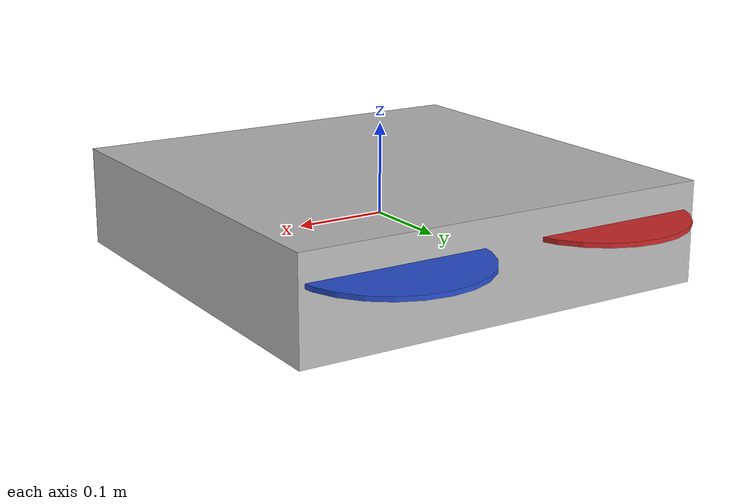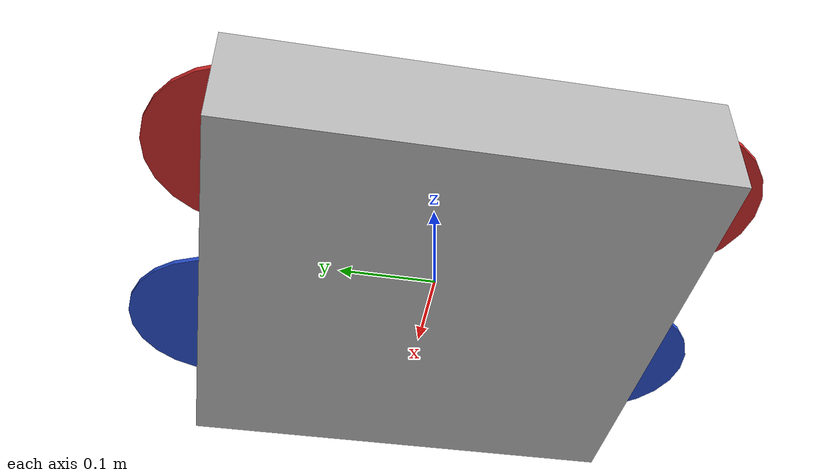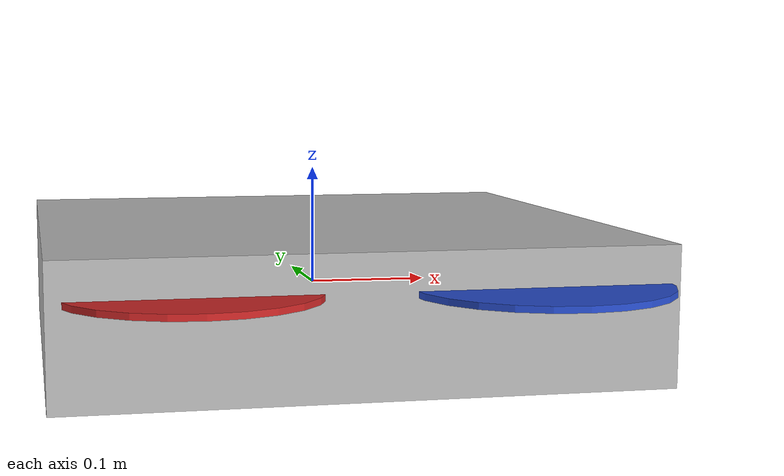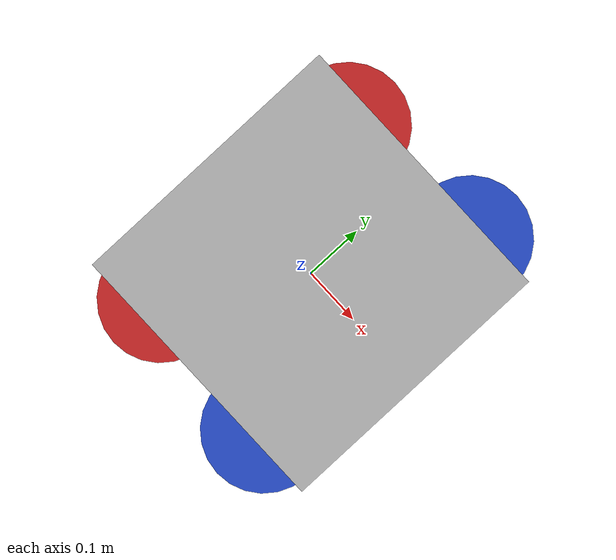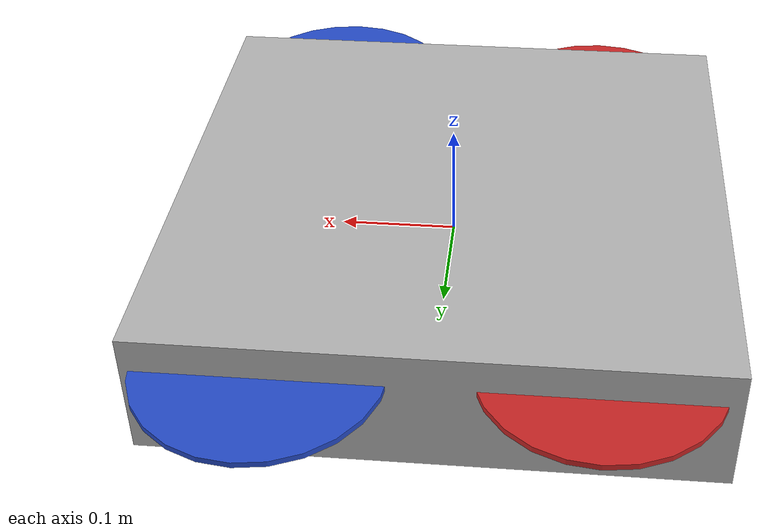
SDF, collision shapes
<?xml version="1.0"?>
<sdf version="1.6">
    <model name="drone">
        <link name="base_link">
            <pose frame="">0 0 0 0 -0 0</pose>
            <inertial>
                <pose frame="">0 0 0 0 -0 0</pose>
                <mass>1.5</mass>
                <inertia>
                  <ixx>0.025</ixx>
                  <ixy>0</ixy>
                  <ixz>0</ixz>
                  <iyy>0.009</iyy>
                  <iyz>0</iyz>
                  <izz>0.033</izz>
                </inertia>
            </inertial>
            <collision name="base_link_inertia_collision">
                <pose frame="">0 0 0 0 -0 0</pose>
                <geometry>
                    <box>
                        <size>0.47 0.47 0.11</size>
                    </box>
                </geometry>
            </collision>
            <visual name="base_link_inertia_visual">
                <pose frame="">0 0 0 0 -0 0</pose>
                <geometry>
                    <mesh>
                        <scale>1 1 1</scale>
                        <uri>model://drone/meshes/x3.dae</uri>
                    </mesh>
                </geometry>
            </visual>
            <visual name="marker_visual_1">
                <pose frame="">-0.07 0 0.065 0 -0 0</pose>
                <geometry>
                    <mesh>
                        <uri>model://drone/meshes/led.dae</uri>
                    </mesh>
                </geometry>
            </visual>
            <visual name="marker_visual_2">
                <pose frame="">-0.08 0.037 0.04 -1.0472 -0 0.2</pose>
                <geometry>
                    <mesh>
                        <uri>model://drone/meshes/led.dae</uri>
                    </mesh>
                </geometry>
            </visual>
            <visual name="marker_visual_3">
                <pose frame="">-0.08 -0.035 0.04 1.0472 -0 -0.1</pose>
                <geometry>
                    <mesh>
                        <uri>model://drone/meshes/led.dae</uri>
                    </mesh>
                </geometry>
            </visual>

            <light name="right_light_source" type="spot">
                <pose frame="">0.01 -0.08 0.05 3.131592653589795 -1.5107899999999999 2.841592653589791</pose>
                <attenuation>
                    <range>15</range>
                    <linear>0</linear>
                    <constant>0.1</constant>
                    <quadratic>0.01</quadratic>
                </attenuation>
                <diffuse>0.8 0.8 0.5 1</diffuse>
                <specular>0.8 0.8 0.5 1</specular>
                <spot>
                    <inner_angle>1</inner_angle>
                    <outer_angle>1.1</outer_angle>
                    <falloff>1</falloff>
                </spot>
                <direction>0 0 -1</direction>
                <cast_shadows>1</cast_shadows>
            </light>
            <light name="downward_flashlight_source" type="spot">
                <pose frame="">0.03 0 0.075 -0.01 -1.3708026535897933 0</pose>
                <attenuation>
                    <range>15</range>
                    <linear>0</linear>
                    <constant>0.1</constant>
                    <quadratic>0.01</quadratic>
                </attenuation>
                <diffuse>0.8 0.8 0.5 1</diffuse>
                <specular>0.8 0.8 0.5 1</specular>
                <spot>
                    <inner_angle>1</inner_angle>
                    <outer_angle>1.1</outer_angle>
                    <falloff>1</falloff>
                </spot>
                <direction>0 0 -1</direction>
                <cast_shadows>1</cast_shadows>
            </light>
            <light name="left_flashlight_source" type="spot">
                <pose frame="">0.01 0.08 0.05 3.131592653589795 -1.5107899999999999 -2.841592653589791</pose>
                <attenuation>
                    <range>15</range>
                    <linear>0</linear>
                    <constant>0.1</constant>
                    <quadratic>0.01</quadratic>
                </attenuation>
                <diffuse>0.8 0.8 0.5 1</diffuse>
                <specular>0.8 0.8 0.5 1</specular>
                <spot>
                    <inner_angle>1</inner_angle>
                    <outer_angle>1.1</outer_angle>
                    <falloff>1</falloff>
                </spot>
                <direction>0 0 -1</direction>
                <cast_shadows>1</cast_shadows>
            </light>

            <sensor name="imu" type="imu">
                <topic>drone/imu</topic>
                <always_on>1</always_on>
                <update_rate>250</update_rate>
                <imu>
                    <enable_orientation>0</enable_orientation>
                    <angular_velocity>
                        <x>
                            <noise type="gaussian">
                                <mean>0</mean>
                                <stddev>0.009</stddev>
                                <bias_mean>0.00075</bias_mean>
                                <bias_stddev>0.005</bias_stddev>
                                <dynamic_bias_stddev>0.00002</dynamic_bias_stddev>
                                <dynamic_bias_correlation_time>400.0</dynamic_bias_correlation_time>
                                <precision>0.00025</precision>
                            </noise>
                        </x>
                        <y>
                            <noise type="gaussian">
                                <mean>0</mean>
                                <stddev>0.009</stddev>
                                <bias_mean>0.00075</bias_mean>
                                <bias_stddev>0.005</bias_stddev>
                                <dynamic_bias_stddev>0.00002</dynamic_bias_stddev>
                                <dynamic_bias_correlation_time>400.0</dynamic_bias_correlation_time>
                                <precision>0.00025</precision>
                            </noise>
                        </y>
                        <z>
                            <noise type="gaussian">
                                <mean>0</mean>
                                <stddev>0.009</stddev>
                                <bias_mean>0.00075</bias_mean>
                                <bias_stddev>0.005</bias_stddev>
                                <dynamic_bias_stddev>0.00002</dynamic_bias_stddev>
                                <dynamic_bias_correlation_time>400.0</dynamic_bias_correlation_time>
                                <precision>0.00025</precision>
                            </noise>
                        </z>
                    </angular_velocity>
                    <linear_acceleration>
                        <x>
                            <noise type="gaussian">
                                <mean>0</mean>
                                <stddev>0.021</stddev>
                                <bias_mean>0.05</bias_mean>
                                <bias_stddev>0.0075</bias_stddev>
                                <dynamic_bias_stddev>0.000375</dynamic_bias_stddev>
                                <dynamic_bias_correlation_time>175.0</dynamic_bias_correlation_time>
                                <precision>0.005</precision>
                            </noise>
                        </x>
                        <y>
                            <noise type="gaussian">
                                <mean>0</mean>
                                <stddev>0.021</stddev>
                                <bias_mean>0.05</bias_mean>
                                <bias_stddev>0.0075</bias_stddev>
                                <dynamic_bias_stddev>0.000375</dynamic_bias_stddev>
                                <dynamic_bias_correlation_time>175.0</dynamic_bias_correlation_time>
                                <precision>0.005</precision>
                            </noise>
                        </y>
                        <z>
                            <noise type="gaussian">
                                <mean>0</mean>
                                <stddev>0.021</stddev>
                                <bias_mean>0.05</bias_mean>
                                <bias_stddev>0.0075</bias_stddev>
                                <dynamic_bias_stddev>0.000375</dynamic_bias_stddev>
                                <dynamic_bias_correlation_time>175.0</dynamic_bias_correlation_time>
                                <precision>0.005</precision>
                            </noise>
                        </z>
                    </linear_acceleration>
                </imu>
            </sensor>
            <sensor name="air_pressure" type="air_pressure">
                <topic>drone/air_pressure</topic>
                <always_on>1</always_on>
                <update_rate>20</update_rate>
                <air_pressure>
                    <reference_altitude>0</reference_altitude>
                    <pressure>
                        <noise type="gaussian">
                            <mean>0</mean>
                            <stddev>1.0</stddev>
                            <bias_mean>0</bias_mean>
                            <bias_stddev>10</bias_stddev>
                            <dynamic_bias_stddev>10</dynamic_bias_stddev>
                            <dynamic_bias_correlation_time>3600</dynamic_bias_correlation_time>
                        </noise>
                    </pressure>
                </air_pressure>
            </sensor>
            <sensor name="magnetometer" type="magnetometer">
                <topic>drone/magnetometer</topic>
                <always_on>1</always_on>
                <update_rate>20</update_rate>
                <magnetometer>
                    <x>
                        <noise type="gaussian">
                            <mean>0.0</mean>
                            <stddev>0.01</stddev>
                        </noise>
                    </x>
                    <y>
                        <noise type="gaussian">
                            <mean>0.0</mean>
                            <stddev>0.01</stddev>
                        </noise>
                    </y>
                    <z>
                        <noise type="gaussian">
                            <mean>0.0</mean>
                            <stddev>0.01</stddev>
                        </noise>
                    </z>
                </magnetometer>
            </sensor>
            <!-- Use lidar to mimic sonar -->
            <sensor name='sonar' type='gpu_lidar'>
                <always_on>1</always_on>
                <update_rate>20</update_rate>
                <topic>drone/sonar</topic>
                <pose>0 0 0 0 1.57 0</pose>
                <ray>
                    <scan>
                        <horizontal>
                            <samples>2</samples>
                            <resolution>1</resolution>
                            <min_angle>0</min_angle>
                            <max_angle>0.01745329251</max_angle>
                        </horizontal>
                        <vertical>
                            <samples>1</samples>
                            <resolution>1</resolution>
                            <min_angle>-0.01745329251</min_angle>
                            <max_angle>0.01745329251</max_angle>
                        </vertical>
                    </scan>
                    <range>
                        <min>0.01</min>
                        <max>4</max>
                        <resolution>0.02</resolution>
                    </range>
                    <noise>
                        <type>gaussian</type>
                        <mean>0.0</mean>
                        <stddev>0.02</stddev>
                    </noise>
                </ray>
            </sensor>

            <!-- yk: gps horizontal stddev is not in meters but in the original long and lat degrees -->
            <sensor name="gps" type="navsat">
                <topic>drone/fix</topic>
                <always_on>1</always_on>
                <update_rate>2</update_rate>
                <navsat>
                    <position_sensing>
                        <horizontal>
                            <noise type="gaussian">
                                <mean>0.0</mean>
                                <stddev>0.000001</stddev>
                            </noise>
                        </horizontal>
                        <vertical>
                            <noise type="gaussian">
                                <mean>0.0</mean>
                                <stddev>0.0</stddev>
                            </noise>
                        </vertical>
                    </position_sensing>
                </navsat>
            </sensor>

        </link>
        <link name="rotor_0">
            <pose frame="">0.13 -0.22 0.023 0 -0 0</pose>
            <inertial>
                <pose frame="">0 0 0 0 -0 0</pose>
                <mass>0.005</mass>
                <inertia>
                    <ixx>9.75e-07</ixx>
                    <ixy>0</ixy>
                    <ixz>0</ixz>
                    <iyy>4.17041e-05</iyy>
                    <iyz>0</iyz>
                    <izz>4.26041e-05</izz>
                </inertia>
            </inertial>
            <collision name="rotor_0_collision">
                <pose frame="">0 0 0 0 -0 0</pose>
                <geometry>
                    <cylinder>
                        <length>0.005</length>
                        <radius>0.1</radius>
                    </cylinder>
                </geometry>
                <surface>
                    <contact>
                        <ode/>
                    </contact>
                    <friction>
                        <ode/>
                    </friction>
                </surface>
            </collision>
            <visual name="rotor_0_visual">
                <pose frame="">0 0 0 0 -0 0</pose>
                <geometry>
                    <mesh>
                        <scale>0.1 0.1 0.1</scale>
                        <uri>model://drone/meshes/propeller_ccw.dae</uri>
                    </mesh>
                </geometry>
                <material>
                    <diffuse>0 0 1 1</diffuse>
                    <script>
                        <name>Gazebo/Blue</name>
                        <uri>file://media/materials/scripts/gazebo.material</uri>
                    </script>
                </material>
                <cast_shadows>0</cast_shadows>
            </visual>
            <gravity>1</gravity>
            <velocity_decay/>
        </link>
        <joint name="rotor_0_joint" type="revolute">
            <child>rotor_0</child>
            <parent>base_link</parent>
            <axis>
                <xyz>0 0 1</xyz>
                <limit>
                    <lower>-1e+16</lower>
                    <upper>1e+16</upper>
                </limit>
                <dynamics>
                    <spring_reference>0</spring_reference>
                    <spring_stiffness>0</spring_stiffness>
                </dynamics>
                <use_parent_model_frame>1</use_parent_model_frame>
            </axis>
        </joint>
        <link name="rotor_1">
            <pose frame="">-0.13 0.2 0.023 0 -0 0</pose>
            <inertial>
                <pose frame="">0 0 0 0 -0 0</pose>
                <mass>0.005</mass>
                <inertia>
                    <ixx>9.75e-07</ixx>
                    <ixy>0</ixy>
                    <ixz>0</ixz>
                    <iyy>4.17041e-05</iyy>
                    <iyz>0</iyz>
                    <izz>4.26041e-05</izz>
                </inertia>
            </inertial>
            <collision name="rotor_1_collision">
                <pose frame="">0 0 0 0 -0 0</pose>
                <geometry>
                    <cylinder>
                        <length>0.005</length>
                        <radius>0.1</radius>
                    </cylinder>
                </geometry>
                <surface>
                    <contact>
                        <ode/>
                    </contact>
                    <friction>
                        <ode/>
                    </friction>
                </surface>
            </collision>
            <visual name="rotor_1_visual">
                <pose frame="">0 0 0 0 -0 0</pose>
                <geometry>
                    <mesh>
                        <scale>0.1 0.1 0.1</scale>
                        <uri>model://drone/meshes/propeller_ccw.dae</uri>
                    </mesh>
                </geometry>
                <material>
                    <diffuse>1 0 0 1</diffuse>
                    <script>
                        <name>Gazebo/Red</name>
                        <uri>file://media/materials/scripts/gazebo.material</uri>
                    </script>
                </material>
                <cast_shadows>0</cast_shadows>
            </visual>
            <gravity>1</gravity>
            <velocity_decay/>
        </link>
        <joint name="rotor_1_joint" type="revolute">
            <child>rotor_1</child>
            <parent>base_link</parent>
            <axis>
                <xyz>0 0 1</xyz>
                <limit>
                    <lower>-1e+16</lower>
                    <upper>1e+16</upper>
                </limit>
                <dynamics>
                    <spring_reference>0</spring_reference>
                    <spring_stiffness>0</spring_stiffness>
                </dynamics>
                <use_parent_model_frame>1</use_parent_model_frame>
            </axis>
        </joint>
        <link name="rotor_2">
            <pose frame="">0.13 0.22 0.023 0 -0 0</pose>
            <inertial>
                <pose frame="">0 0 0 0 -0 0</pose>
                <mass>0.005</mass>
                <inertia>
                    <ixx>9.75e-07</ixx>
                    <ixy>0</ixy>
                    <ixz>0</ixz>
                    <iyy>4.17041e-05</iyy>
                    <iyz>0</iyz>
                    <izz>4.26041e-05</izz>
                </inertia>
            </inertial>
            <collision name="rotor_2_collision">
                <pose frame="">0 0 0 0 -0 0</pose>
                <geometry>
                    <cylinder>
                        <length>0.005</length>
                        <radius>0.1</radius>
                    </cylinder>
                </geometry>
                <surface>
                    <contact>
                        <ode/>
                    </contact>
                    <friction>
                        <ode/>
                    </friction>
                </surface>
            </collision>
            <visual name="rotor_2_visual">
                <pose frame="">0 0 0 0 -0 0</pose>
                <geometry>
                    <mesh>
                        <scale>0.1 0.1 0.1</scale>
                        <uri>model://drone/meshes/propeller_cw.dae</uri>
                    </mesh>
                </geometry>
                <material>
                    <diffuse>0 0 1 1</diffuse>
                    <script>
                        <name>Gazebo/Blue</name>
                        <uri>file://media/materials/scripts/gazebo.material</uri>
                    </script>
                </material>
                <cast_shadows>0</cast_shadows>
            </visual>
            <gravity>1</gravity>
            <velocity_decay/>
        </link>
        <joint name="rotor_2_joint" type="revolute">
            <child>rotor_2</child>
            <parent>base_link</parent>
            <axis>
                <xyz>0 0 1</xyz>
                <limit>
                    <lower>-1e+16</lower>
                    <upper>1e+16</upper>
                </limit>
                <dynamics>
                    <spring_reference>0</spring_reference>
                    <spring_stiffness>0</spring_stiffness>
                </dynamics>
                <use_parent_model_frame>1</use_parent_model_frame>
            </axis>
        </joint>
        <link name="rotor_3">
            <pose frame="">-0.13 -0.2 0.023 0 -0 0</pose>
            <inertial>
                <pose frame="">0 0 0 0 -0 0</pose>
                <mass>0.005</mass>
                <inertia>
                    <ixx>9.75e-07</ixx>
                    <ixy>0</ixy>
                    <ixz>0</ixz>
                    <iyy>4.17041e-05</iyy>
                    <iyz>0</iyz>
                    <izz>4.26041e-05</izz>
                </inertia>
            </inertial>
            <collision name="rotor_3_collision">
                <pose frame="">0 0 0 0 -0 0</pose>
                <geometry>
                    <cylinder>
                        <length>0.005</length>
                        <radius>0.1</radius>
                    </cylinder>
                </geometry>
                <surface>
                    <contact>
                        <ode/>
                    </contact>
                    <friction>
                        <ode/>
                    </friction>
                </surface>
            </collision>
            <visual name="rotor_3_visual">
                <pose frame="">0 0 0 0 -0 0</pose>
                <geometry>
                    <mesh>
                        <scale>0.1 0.1 0.1</scale>
                        <uri>model://drone/meshes/propeller_cw.dae</uri>
                    </mesh>
                </geometry>
                <material>
                    <diffuse>1 0 0 1</diffuse>
                    <script>
                        <name>Gazebo/Red</name>
                        <uri>file://media/materials/scripts/gazebo.material</uri>
                    </script>
                </material>
                <cast_shadows>0</cast_shadows>
            </visual>
            <gravity>1</gravity>
            <velocity_decay/>
        </link>
        <joint name="rotor_3_joint" type="revolute">
            <child>rotor_3</child>
            <parent>base_link</parent>
            <axis>
                <xyz>0 0 1</xyz>
                <limit>
                    <lower>-1e+16</lower>
                    <upper>1e+16</upper>
                </limit>
                <dynamics>
                    <spring_reference>0</spring_reference>
                    <spring_stiffness>0</spring_stiffness>
                </dynamics>
                <use_parent_model_frame>1</use_parent_model_frame>
            </axis>
        </joint>

    <plugin
        filename="gz-sim-multicopter-motor-model-system"
        name="gz::sim::systems::MulticopterMotorModel">
        <robotNamespace>drone</robotNamespace>
        <jointName>rotor_0_joint</jointName>
        <linkName>rotor_0</linkName>
        <turningDirection>ccw</turningDirection>
        <timeConstantUp>0.0125</timeConstantUp>
        <timeConstantDown>0.025</timeConstantDown>
        <maxRotVelocity>800.0</maxRotVelocity>
        <motorConstant>8.54858e-06</motorConstant>
        <momentConstant>0.016</momentConstant>
        <commandSubTopic>command/motor_speed/0</commandSubTopic>
        <actuator_number>0</actuator_number>
        <rotorDragCoefficient>8.06428e-05</rotorDragCoefficient>
        <rollingMomentCoefficient>1e-06</rollingMomentCoefficient>
        <motorSpeedPubTopic>motor_speed/0</motorSpeedPubTopic>
        <rotorVelocitySlowdownSim>10</rotorVelocitySlowdownSim>
        <motorType>velocity</motorType>
      </plugin>
      <plugin
        filename="gz-sim-multicopter-motor-model-system"
        name="gz::sim::systems::MulticopterMotorModel">
        <robotNamespace>drone</robotNamespace>
        <jointName>rotor_1_joint</jointName>
        <linkName>rotor_1</linkName>
        <turningDirection>ccw</turningDirection>
        <timeConstantUp>0.0125</timeConstantUp>
        <timeConstantDown>0.025</timeConstantDown>
        <maxRotVelocity>800.0</maxRotVelocity>
        <motorConstant>8.54858e-06</motorConstant>
        <momentConstant>0.016</momentConstant>
        <commandSubTopic>command/motor_speed/1</commandSubTopic>
        <actuator_number>1</actuator_number>
        <rotorDragCoefficient>8.06428e-05</rotorDragCoefficient>
        <rollingMomentCoefficient>1e-06</rollingMomentCoefficient>
        <motorSpeedPubTopic>motor_speed/1</motorSpeedPubTopic>
        <rotorVelocitySlowdownSim>10</rotorVelocitySlowdownSim>
        <motorType>velocity</motorType>
      </plugin>
      <plugin
        filename="gz-sim-multicopter-motor-model-system"
        name="gz::sim::systems::MulticopterMotorModel">
        <robotNamespace>drone</robotNamespace>
        <jointName>rotor_2_joint</jointName>
        <linkName>rotor_2</linkName>
        <turningDirection>cw</turningDirection>
        <timeConstantUp>0.0125</timeConstantUp>
        <timeConstantDown>0.025</timeConstantDown>
        <maxRotVelocity>800.0</maxRotVelocity>
        <motorConstant>8.54858e-06</motorConstant>
        <momentConstant>0.016</momentConstant>
        <commandSubTopic>command/motor_speed/2</commandSubTopic>
        <actuator_number>2</actuator_number>
        <rotorDragCoefficient>8.06428e-05</rotorDragCoefficient>
        <rollingMomentCoefficient>1e-06</rollingMomentCoefficient>
        <motorSpeedPubTopic>motor_speed/2</motorSpeedPubTopic>
        <rotorVelocitySlowdownSim>10</rotorVelocitySlowdownSim>
        <motorType>velocity</motorType>
      </plugin>
      <plugin
        filename="gz-sim-multicopter-motor-model-system"
        name="gz::sim::systems::MulticopterMotorModel">
        <robotNamespace>drone</robotNamespace>
        <jointName>rotor_3_joint</jointName>
        <linkName>rotor_3</linkName>
        <turningDirection>cw</turningDirection>
        <timeConstantUp>0.0125</timeConstantUp>
        <timeConstantDown>0.025</timeConstantDown>
        <maxRotVelocity>800.0</maxRotVelocity>
        <motorConstant>8.54858e-06</motorConstant>
        <momentConstant>0.016</momentConstant>
        <commandSubTopic>command/motor_speed/3</commandSubTopic>
        <actuator_number>3</actuator_number>
        <rotorDragCoefficient>8.06428e-05</rotorDragCoefficient>
        <rollingMomentCoefficient>1e-06</rollingMomentCoefficient>
        <motorSpeedPubTopic>motor_speed/3</motorSpeedPubTopic>
        <rotorVelocitySlowdownSim>10</rotorVelocitySlowdownSim>
        <motorType>velocity</motorType>
      </plugin>
      <plugin
        filename="gz-sim-multicopter-control-system"
        name="gz::sim::systems::MulticopterVelocityControl">
        <robotNamespace>drone</robotNamespace>
        <commandSubTopic>command/twist</commandSubTopic>
        <enableSubTopic>enable</enableSubTopic>
        <comLinkName>base_link</comLinkName>
        <velocityGain>2.7 2.7 2.7</velocityGain>
        <attitudeGain>2 0.3 0.15</attitudeGain> <!-- YK: fix vibrating pitch issue -->
        <angularRateGain>0.4 0.52 0.18</angularRateGain>
        <maximumLinearAcceleration>2 2 2</maximumLinearAcceleration>

        <rotorConfiguration>
          <rotor>
            <jointName>rotor_0_joint</jointName>
            <forceConstant>8.54858e-06</forceConstant>
            <momentConstant>0.016</momentConstant>
            <direction>1</direction>
          </rotor>
          <rotor>
            <jointName>rotor_1_joint</jointName>
            <forceConstant>8.54858e-06</forceConstant>
            <momentConstant>0.016</momentConstant>
            <direction>1</direction>
          </rotor>
          <rotor>
            <jointName>rotor_2_joint</jointName>
            <forceConstant>8.54858e-06</forceConstant>
            <momentConstant>0.016</momentConstant>
            <direction>-1</direction>
          </rotor>
          <rotor>
            <jointName>rotor_3_joint</jointName>
            <forceConstant>8.54858e-06</forceConstant>
            <momentConstant>0.016</momentConstant>
            <direction>-1</direction>
          </rotor>
        </rotorConfiguration>
      </plugin>
      <plugin
        filename="gz-sim-odometry-publisher-system"
        name="gz::sim::systems::OdometryPublisher">
        <dimensions>3</dimensions>
      </plugin>
      <plugin filename="gz-sim-joint-state-publisher-system" name="gz::sim::systems::JointStatePublisher">
        <topic>drone/joint_states</topic>
        <joint_name>rotor_0_joint</joint_name>
        <joint_name>rotor_1_joint</joint_name>
        <joint_name>rotor_2_joint</joint_name>
        <joint_name>rotor_3_joint</joint_name>
      </plugin>
    </model>

</sdf>
